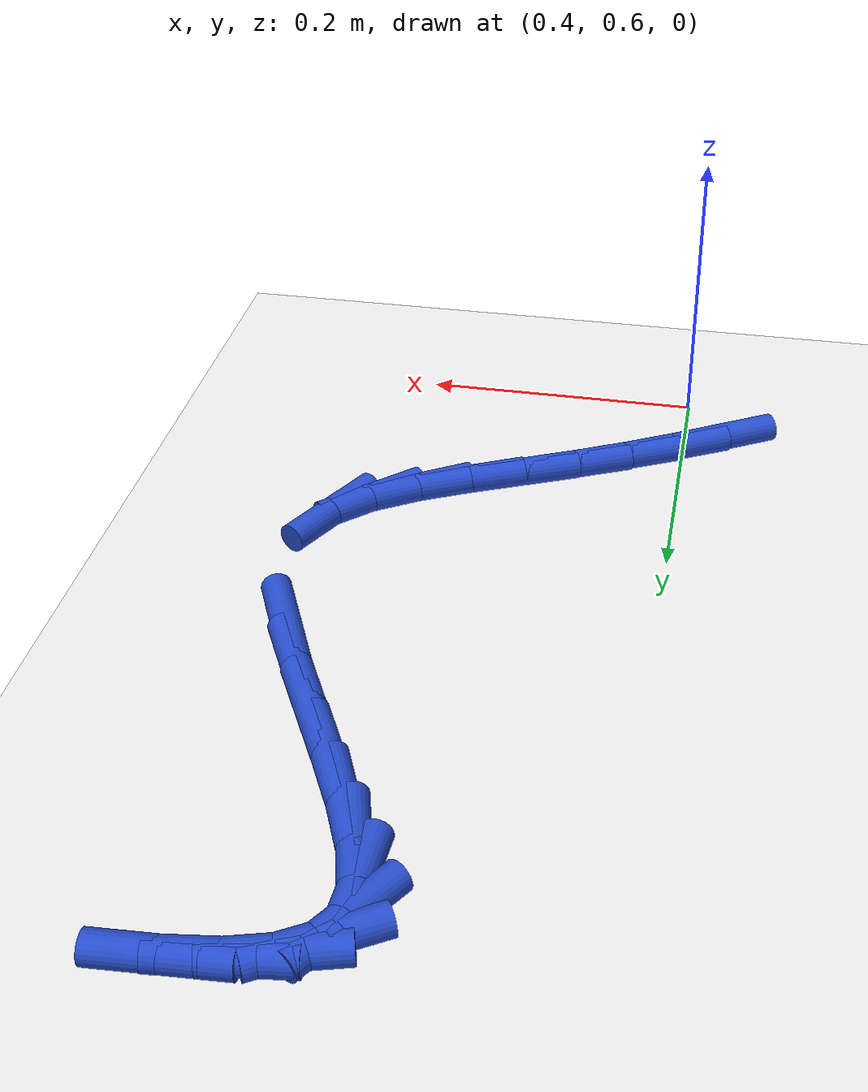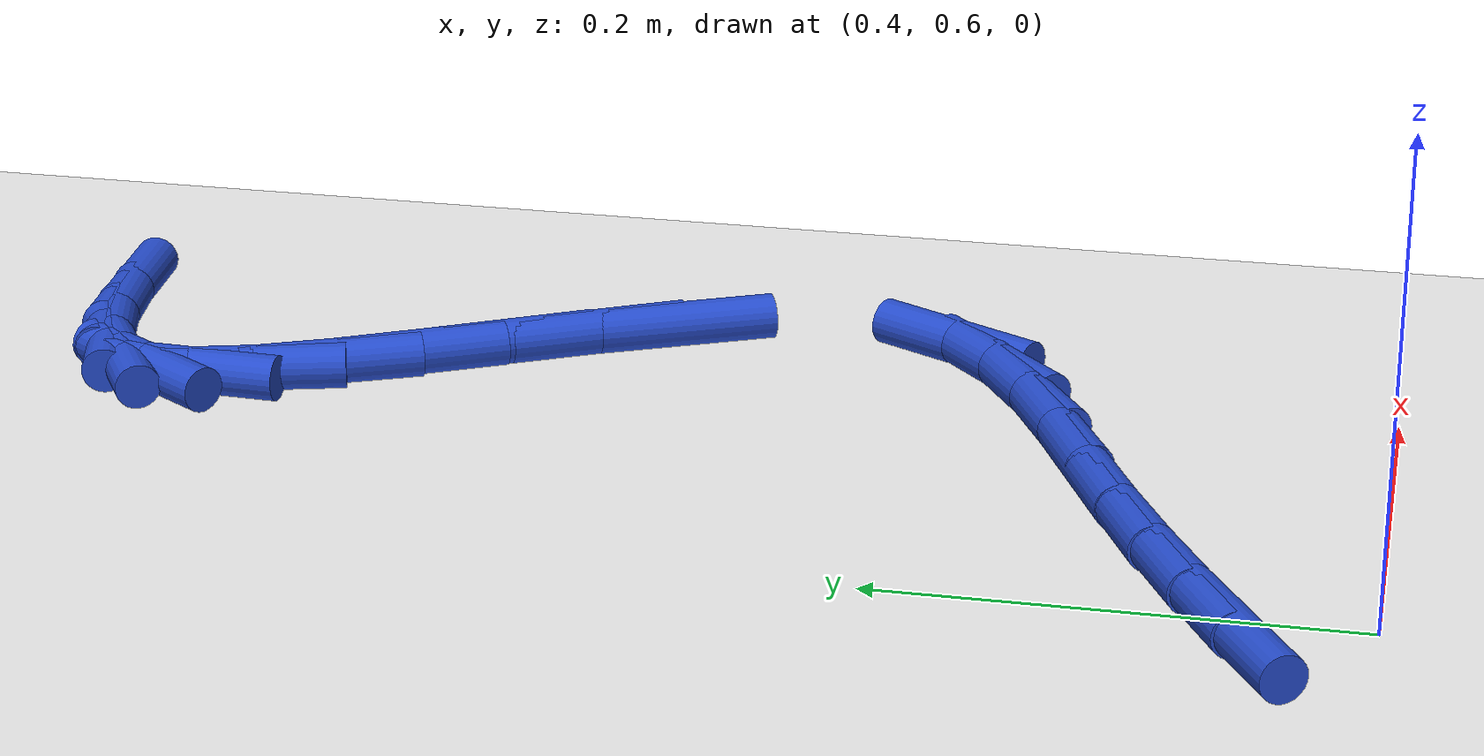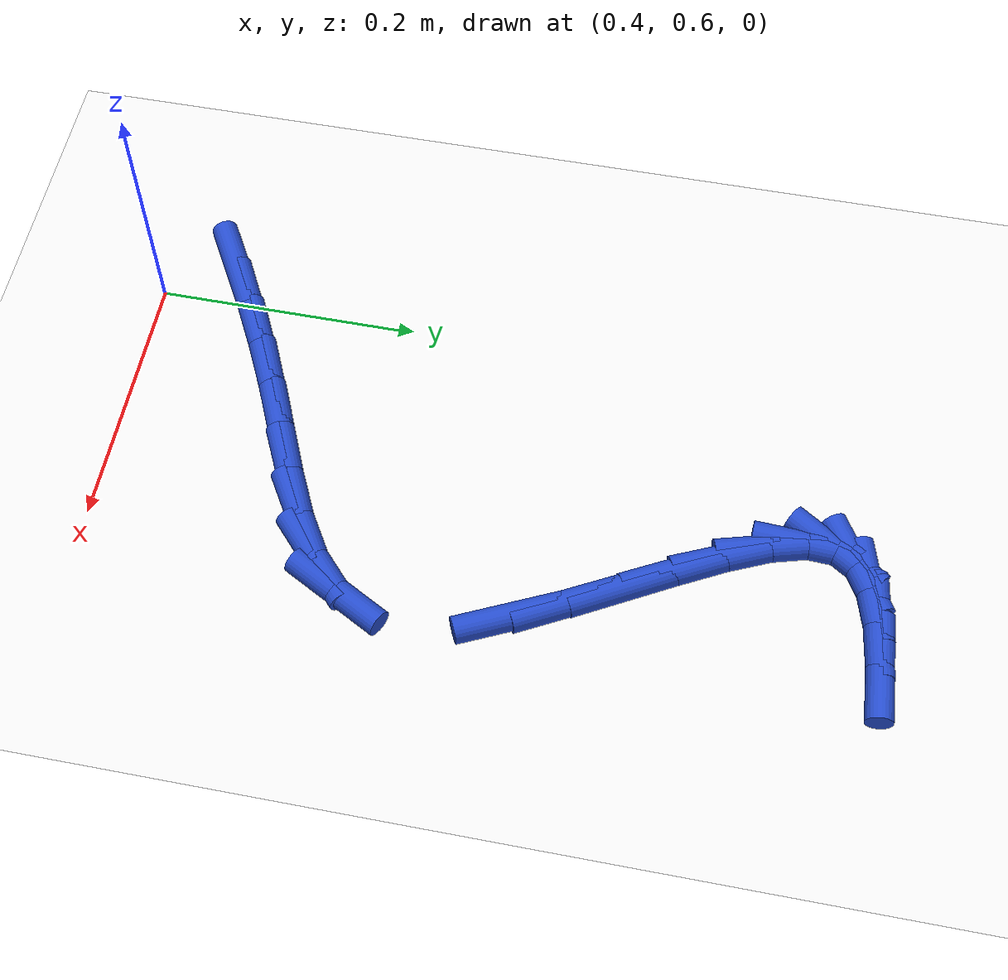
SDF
<sdf version="1.6">
 <world name="default">
  <model name="ground_plane">
   <static>1</static>
   <link name="link">
    <collision name="collision">
     <geometry><plane><normal>0 0 1</normal><size>100 100</size></plane></geometry>
     <surface><friction><ode><mu>100</mu><mu2>50</mu2></ode></friction></surface>
    </collision>
    <visual name="visual">
     <cast_shadows>0</cast_shadows>
     <geometry><plane><normal>0 0 1</normal><size>100 100</size></plane></geometry>
     <material>
      <script><uri>file://media/materials/scripts/gazebo.material</uri><name>Gazebo/WhiteGlow</name></script>
     </material>
    </visual>
   </link>
  </model>
  <model name="line">
   <link name="link_23">
    <pose>0.3717962846754639 0.6523218633201728 0.01 0 1.57 0.5220133525040616</pose>
    <collision name="collision">
     <geometry><cylinder><radius>0.01</radius><length>0.08</length></cylinder></geometry>
    </collision>
    <visual name="visual">
     <material>
      <script><name>Gazebo/Blue</name><uri>file://media/materials/scripts/gazebo.material</uri></script>
     </material>
     <geometry><cylinder><radius>0.01</radius><length>0.08</length></cylinder></geometry>
    </visual>
   </link>
   <link name="link_24">
    <pose>0.404684617129349 0.6712404918739685 0.01 0 1.57 0.48860412883908966</pose>
    <collision name="collision">
     <geometry><cylinder><radius>0.01</radius><length>0.08</length></cylinder></geometry>
    </collision>
    <visual name="visual">
     <material>
      <script><name>Gazebo/Blue</name><uri>file://media/materials/scripts/gazebo.material</uri></script>
     </material>
     <geometry><cylinder><radius>0.01</radius><length>0.08</length></cylinder></geometry>
    </visual>
   </link>
   <link name="link_25">
    <pose>0.4387015159875196 0.6893237555290072 0.01 0 1.57 0.4565701344284632</pose>
    <collision name="collision">
     <geometry><cylinder><radius>0.01</radius><length>0.08</length></cylinder></geometry>
    </collision>
    <visual name="visual">
     <material>
      <script><name>Gazebo/Blue</name><uri>file://media/materials/scripts/gazebo.material</uri></script>
     </material>
     <geometry><cylinder><radius>0.01</radius><length>0.08</length></cylinder></geometry>
    </visual>
   </link>
   <link name="link_26">
    <pose>0.4738110947720653 0.7065690261201196 0.01 0 1.57 0.42595995530069325</pose>
    <collision name="collision">
     <geometry><cylinder><radius>0.01</radius><length>0.08</length></cylinder></geometry>
    </collision>
    <visual name="visual">
     <material>
      <script><name>Gazebo/Blue</name><uri>file://media/materials/scripts/gazebo.material</uri></script>
     </material>
     <geometry><cylinder><radius>0.01</radius><length>0.08</length></cylinder></geometry>
    </visual>
   </link>
   <link name="link_27">
    <pose>0.5099714830338969 0.7229764493643596 0.01 0 1.57 0.41227607151097195</pose>
    <collision name="collision">
     <geometry><cylinder><radius>0.01</radius><length>0.08</length></cylinder></geometry>
    </collision>
    <visual name="visual">
     <material>
      <script><name>Gazebo/Blue</name><uri>file://media/materials/scripts/gazebo.material</uri></script>
     </material>
     <geometry><cylinder><radius>0.01</radius><length>0.08</length></cylinder></geometry>
    </visual>
   </link>
   <link name="link_28">
    <pose>0.5463794437905273 0.7388991040108068 0.01 0 1.57 0.4474354114773365</pose>
    <collision name="collision">
     <geometry><cylinder><radius>0.01</radius><length>0.08</length></cylinder></geometry>
    </collision>
    <visual name="visual">
     <material>
      <script><name>Gazebo/Blue</name><uri>file://media/materials/scripts/gazebo.material</uri></script>
     </material>
     <geometry><cylinder><radius>0.01</radius><length>0.08</length></cylinder></geometry>
    </visual>
   </link>
   <link name="link_29">
    <pose>0.5807325507093745 0.7553850211339979 0.01 0 1.57 0.547441356616262</pose>
    <collision name="collision">
     <geometry><cylinder><radius>0.01</radius><length>0.08</length></cylinder></geometry>
    </collision>
    <visual name="visual">
     <material>
      <script><name>Gazebo/Blue</name><uri>file://media/materials/scripts/gazebo.material</uri></script>
     </material>
     <geometry><cylinder><radius>0.01</radius><length>0.08</length></cylinder></geometry>
    </visual>
   </link>
   <link name="link_30">
    <pose>0.6105532339016472 0.7735634199663679 0.01 0 1.57 0.7440941814532585</pose>
    <collision name="collision">
     <geometry><cylinder><radius>0.01</radius><length>0.08</length></cylinder></geometry>
    </collision>
    <visual name="visual">
     <material>
      <script><name>Gazebo/Blue</name><uri>file://media/materials/scripts/gazebo.material</uri></script>
     </material>
     <geometry><cylinder><radius>0.01</radius><length>0.08</length></cylinder></geometry>
    </visual>
   </link>
   <link name="link_31">
    <pose>0.6333639234785554 0.7945635197403528 0.01 0 1.57 1.0800613581521792</pose>
    <collision name="collision">
     <geometry><cylinder><radius>0.01</radius><length>0.08</length></cylinder></geometry>
    </collision>
    <visual name="visual">
     <material>
      <script><name>Gazebo/Blue</name><uri>file://media/materials/scripts/gazebo.material</uri></script>
     </material>
     <geometry><cylinder><radius>0.01</radius><length>0.08</length></cylinder></geometry>
    </visual>
   </link>
   <link name="link_35">
    <pose>0.6305316134239947 0.9170099963062199 0.01 0 1.57 -1.1289269456628908</pose>
    <collision name="collision">
     <geometry><cylinder><radius>0.01</radius><length>0.08</length></cylinder></geometry>
    </collision>
    <visual name="visual">
     <material>
      <script><name>Gazebo/Blue</name><uri>file://media/materials/scripts/gazebo.material</uri></script>
     </material>
     <geometry><cylinder><radius>0.01</radius><length>0.08</length></cylinder></geometry>
    </visual>
   </link>
   <link name="link_36">
    <pose>0.6132507387682797 0.9535394992266615 0.01 0 1.57 -1.0796502497421423</pose>
    <collision name="collision">
     <geometry><cylinder><radius>0.01</radius><length>0.08</length></cylinder></geometry>
    </collision>
    <visual name="visual">
     <material>
      <script><name>Gazebo/Blue</name><uri>file://media/materials/scripts/gazebo.material</uri></script>
     </material>
     <geometry><cylinder><radius>0.01</radius><length>0.08</length></cylinder></geometry>
    </visual>
   </link>
   <link name="link_37">
    <pose>0.5936260042373949 0.9902307660547813 0.01 0 1.57 -1.0647519490854331</pose>
    <collision name="collision">
     <geometry><cylinder><radius>0.01</radius><length>0.08</length></cylinder></geometry>
    </collision>
    <visual name="visual">
     <material>
      <script><name>Gazebo/Blue</name><uri>file://media/materials/scripts/gazebo.material</uri></script>
     </material>
     <geometry><cylinder><radius>0.01</radius><length>0.08</length></cylinder></geometry>
    </visual>
   </link>
   <link name="link_38">
    <pose>0.573819095992212 1.0259718961414699 0.01 0 1.57 -1.0839599957289607</pose>
    <collision name="collision">
     <geometry><cylinder><radius>0.01</radius><length>0.08</length></cylinder></geometry>
    </collision>
    <visual name="visual">
     <material>
      <script><name>Gazebo/Blue</name><uri>file://media/materials/scripts/gazebo.material</uri></script>
     </material>
     <geometry><cylinder><radius>0.01</radius><length>0.08</length></cylinder></geometry>
    </visual>
   </link>
   <link name="link_39">
    <pose>0.5559917001936033 1.0596509888376158 0.01 0 1.57 -1.1490640036105226</pose>
    <collision name="collision">
     <geometry><cylinder><radius>0.01</radius><length>0.08</length></cylinder></geometry>
    </collision>
    <visual name="visual">
     <material>
      <script><name>Gazebo/Blue</name><uri>file://media/materials/scripts/gazebo.material</uri></script>
     </material>
     <geometry><cylinder><radius>0.01</radius><length>0.08</length></cylinder></geometry>
    </visual>
   </link>
   <link name="link_40">
    <pose>0.5423055030024407 1.0901561434941083 0.01 0 1.57 -1.2963062206103946</pose>
    <collision name="collision">
     <geometry><cylinder><radius>0.01</radius><length>0.08</length></cylinder></geometry>
    </collision>
    <visual name="visual">
     <material>
      <script><name>Gazebo/Blue</name><uri>file://media/materials/scripts/gazebo.material</uri></script>
     </material>
     <geometry><cylinder><radius>0.01</radius><length>0.08</length></cylinder></geometry>
    </visual>
   </link>
   <link name="link_41">
    <pose>0.5349221905795961 1.1163754594618365 0.01 0 1.57 1.52173929487831</pose>
    <collision name="collision">
     <geometry><cylinder><radius>0.01</radius><length>0.08</length></cylinder></geometry>
    </collision>
    <visual name="visual">
     <material>
      <script><name>Gazebo/Blue</name><uri>file://media/materials/scripts/gazebo.material</uri></script>
     </material>
     <geometry><cylinder><radius>0.01</radius><length>0.08</length></cylinder></geometry>
    </visual>
   </link>
   <link name="link_42">
    <pose>0.5359462235607795 1.1372330477162387 0.01 0 1.57 0.9906644327643249</pose>
    <collision name="collision">
     <geometry><cylinder><radius>0.01</radius><length>0.08</length></cylinder></geometry>
    </collision>
    <visual name="visual">
     <material>
      <script><name>Gazebo/Blue</name><uri>file://media/materials/scripts/gazebo.material</uri></script>
     </material>
     <geometry><cylinder><radius>0.01</radius><length>0.08</length></cylinder></geometry>
    </visual>
   </link>
   <link name="link_43">
    <pose>0.5460054320084174 1.152582252571409 0.01 0 1.57 0.5319871836952516</pose>
    <collision name="collision">
     <geometry><cylinder><radius>0.01</radius><length>0.08</length></cylinder></geometry>
    </collision>
    <visual name="visual">
     <material>
      <script><name>Gazebo/Blue</name><uri>file://media/materials/scripts/gazebo.material</uri></script>
     </material>
     <geometry><cylinder><radius>0.01</radius><length>0.08</length></cylinder></geometry>
    </visual>
   </link>
   <link name="link_44">
    <pose>0.5641559653012499 1.1632654660527812 0.01 0 1.57 0.2673198881491739</pose>
    <collision name="collision">
     <geometry><cylinder><radius>0.01</radius><length>0.08</length></cylinder></geometry>
    </collision>
    <visual name="visual">
     <material>
      <script><name>Gazebo/Blue</name><uri>file://media/materials/scripts/gazebo.material</uri></script>
     </material>
     <geometry><cylinder><radius>0.01</radius><length>0.08</length></cylinder></geometry>
    </visual>
   </link>
   <link name="link_45">
    <pose>0.5893777140766487 1.1701730692807775 0.01 0 1.57 0.1279195714314564</pose>
    <collision name="collision">
     <geometry><cylinder><radius>0.01</radius><length>0.08</length></cylinder></geometry>
    </collision>
    <visual name="visual">
     <material>
      <script><name>Gazebo/Blue</name><uri>file://media/materials/scripts/gazebo.material</uri></script>
     </material>
     <geometry><cylinder><radius>0.01</radius><length>0.08</length></cylinder></geometry>
    </visual>
   </link>
   <link name="link_46">
    <pose>0.620650568971986 1.1741954433758208 0.01 0 1.57 0.05579082980136638</pose>
    <collision name="collision">
     <geometry><cylinder><radius>0.01</radius><length>0.08</length></cylinder></geometry>
    </collision>
    <visual name="visual">
     <material>
      <script><name>Gazebo/Blue</name><uri>file://media/materials/scripts/gazebo.material</uri></script>
     </material>
     <geometry><cylinder><radius>0.01</radius><length>0.08</length></cylinder></geometry>
    </visual>
   </link>
  </model>
 </world>
</sdf>
